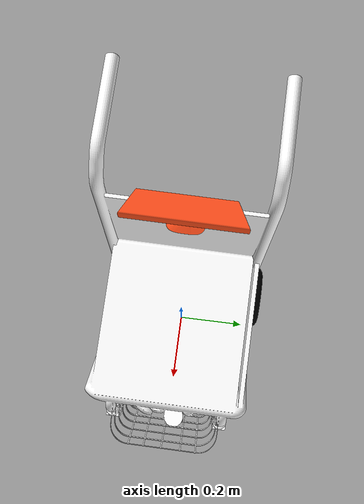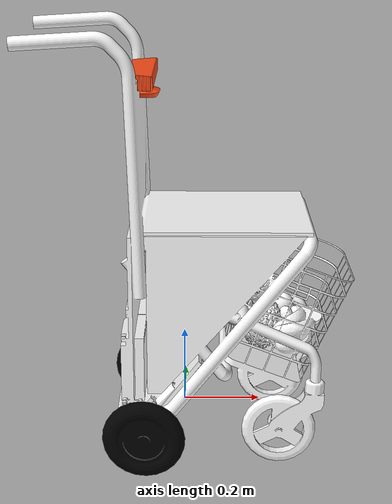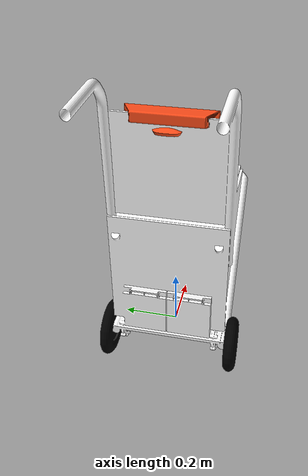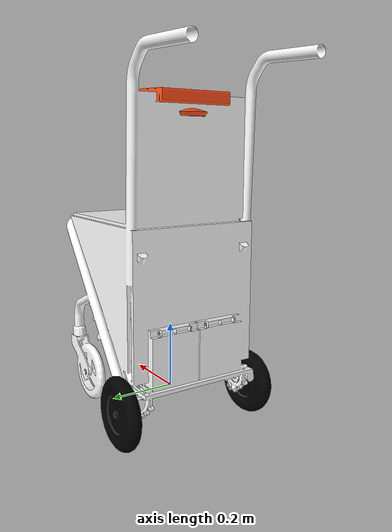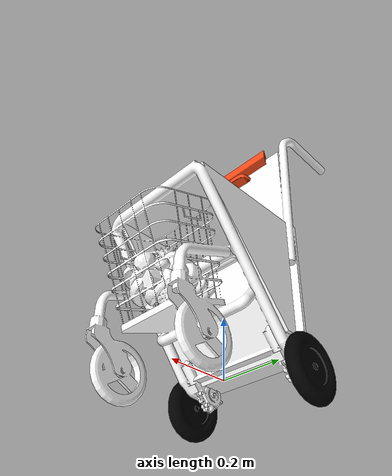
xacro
<?xml version="1.0"?>
<robot name="mobile_robot" xmlns:xacro="http://ros.org/wiki/xacro">

    <material name="blue">
	    <color rgba="0 0 0.8 1"/>
    </material>

    <material name="white">
	    <color rgba="1 1 1 1"/>
    </material>

    <material name="black">
	    <color rgba="0 0 0 1"/>
    </material>

    <material name="green">
        <color rgba="0.0 0.8 0.0 1.0"/>
    </material>

    <material name="orange">
        <color rgba="1 0.3 0.1 1"/>
    </material>

    <material name="red">
        <color rgba="1 0 0 1"/>
    </material>

    <link name="base_link">
        <collision>
          <origin rpy="0 0 0"/>
          <geometry>
            <box size="0.49 0.41 0.83"/>
          </geometry>
        </collision>
    </link>

    <joint name="base_link_joint" type="fixed">
        <origin xyz="-0.1 0 0"/>
        <parent link="base_link" />
        <child link="base_plate" />
    </joint>

    <link name="base_plate">
    <visual>
      <origin xyz="0.53 0.213 -0.1" rpy="0 0 ${pi}"/>
      <geometry>
        <mesh filename="package://autonomus_mobile_robot/stl/main_body.stl" scale="0.001 0.001 0.001" />
      </geometry>
      <material name="white"/>
    </visual>
    <collision>
      <origin xyz="0.53 0.213 -0.1" rpy="0 0 ${pi}"/>
      <geometry>
        <mesh filename="package://autonomus_mobile_robot/stl/main_body.stl" scale="0.001 0.001 0.001" />
      </geometry>
    </collision>
    </link>

    <!-- RIGHT WHEEL LINK -->
    <joint name="right_wheel_joint" type="continuous">
        <origin xyz="0 -0.23 0" rpy="${pi/2} 0 0" />
        <parent link="base_plate" />
        <child link="right_wheel" />
        <axis xyz="0 0 -1"/>
    </joint>

    <link name="right_wheel">
    <visual>
      <origin xyz="0 0 0" rpy="0 0 0"/>
      <geometry>
        <mesh filename="package://autonomus_mobile_robot/stl/wheel.stl" scale="0.001 0.001 0.001"/>
      </geometry>
      <material name="black"/>
    </visual>
    <collision>
      <origin xyz="0 0 0" rpy="0 0 0"/>
      <geometry>
        <mesh filename="package://autonomus_mobile_robot/stl/wheel.stl" scale="0.001 0.001 0.001" />
      </geometry>
    </collision>
    </link>

    <!-- LEFT WHEEL LINK -->
    <joint name="left_wheel_joint" type="continuous">
        <origin xyz="0 0.23 0" rpy="0 ${pi} ${pi/2}"/>
        <parent link="base_plate" />
        <child link="left_wheel" />
        <axis xyz="-1 0 0" />
    </joint>

    <link name="left_wheel">
    <visual>
      <origin xyz="0 0 0" rpy="${pi} -${pi/2} 0"/>
      <geometry>
        <mesh filename="package://autonomus_mobile_robot/stl/wheel.stl" scale="0.001 0.001 0.001"/>
      </geometry>
      <material name="black"/>
    </visual>
    <collision>
      <origin xyz="0 0 0" rpy="${pi} -${pi/2} 0"/>
      <geometry>
        <mesh filename="package://autonomus_mobile_robot/stl/wheel.stl" scale="0.001 0.001 0.001" />
      </geometry>
    </collision>
    </link>

    <!-- KINECT LINK -->
    <joint name="laser_joint" type="fixed">
        <origin xyz="-0 0 0.83" rpy="0 0 0"/>
        <parent link="base_plate" />
        <child link="kinect_link" />
    </joint>

    <link name="kinect_link">
    <visual>
      <origin xyz="0 0 0" rpy="0 0 ${pi}"/>
      <geometry>
        <mesh filename="package://autonomus_mobile_robot/stl/kinect.stl" scale="0.001 0.001 0.001"/>
      </geometry>
      <material name="orange"/>
    </visual>
    <collision>
      <origin xyz="0 0 0" rpy="0 0 ${pi}"/>
      <geometry>
        <mesh filename="package://autonomus_mobile_robot/stl/kinect.stl" scale="0.001 0.001 0.001" />
      </geometry>
    </collision>
    </link>

</robot>
